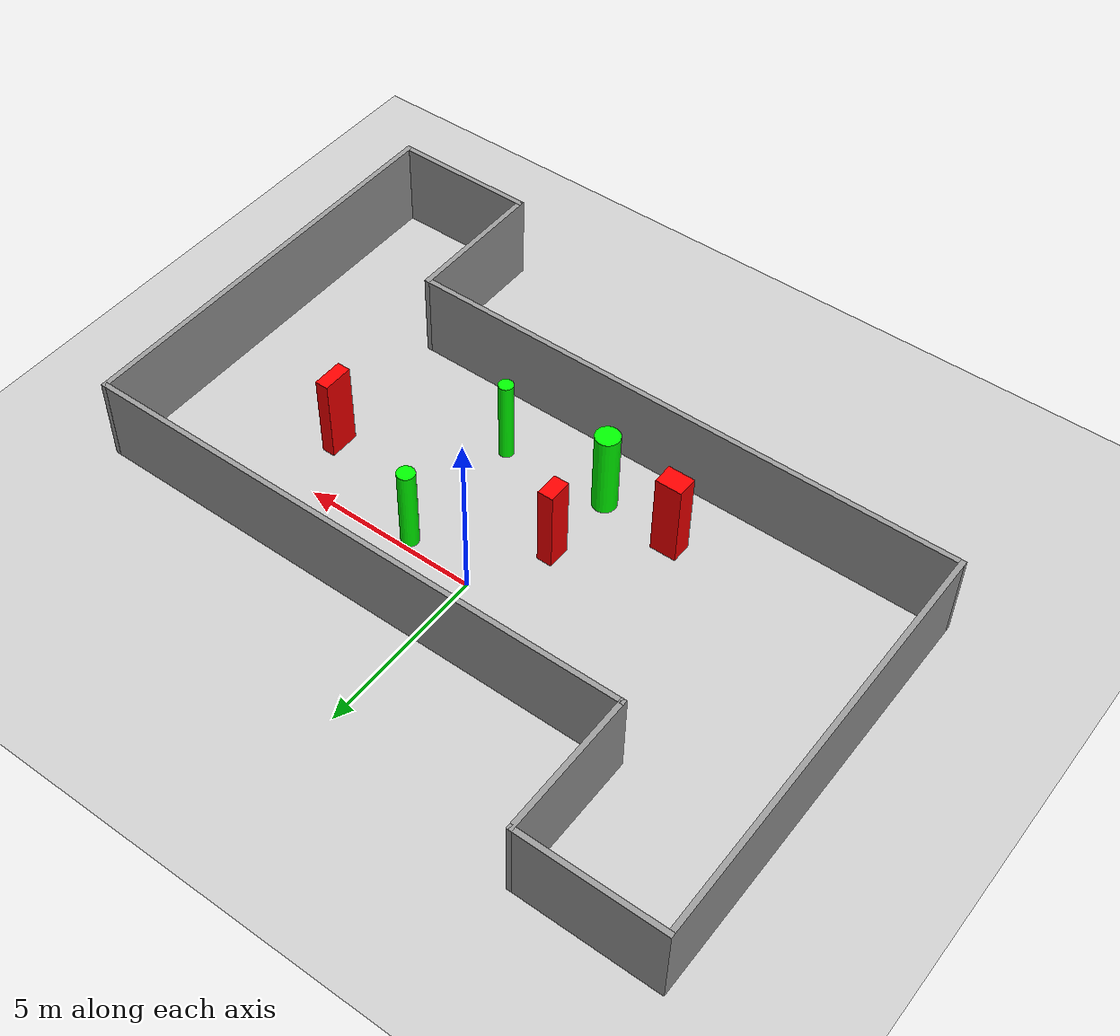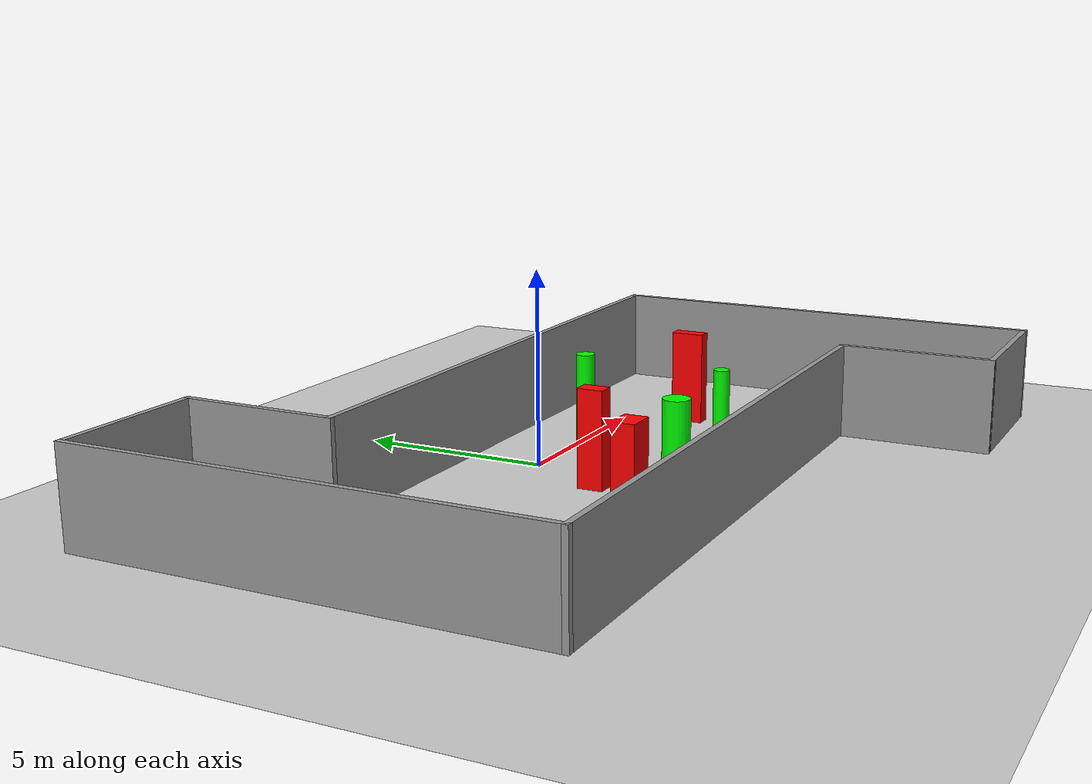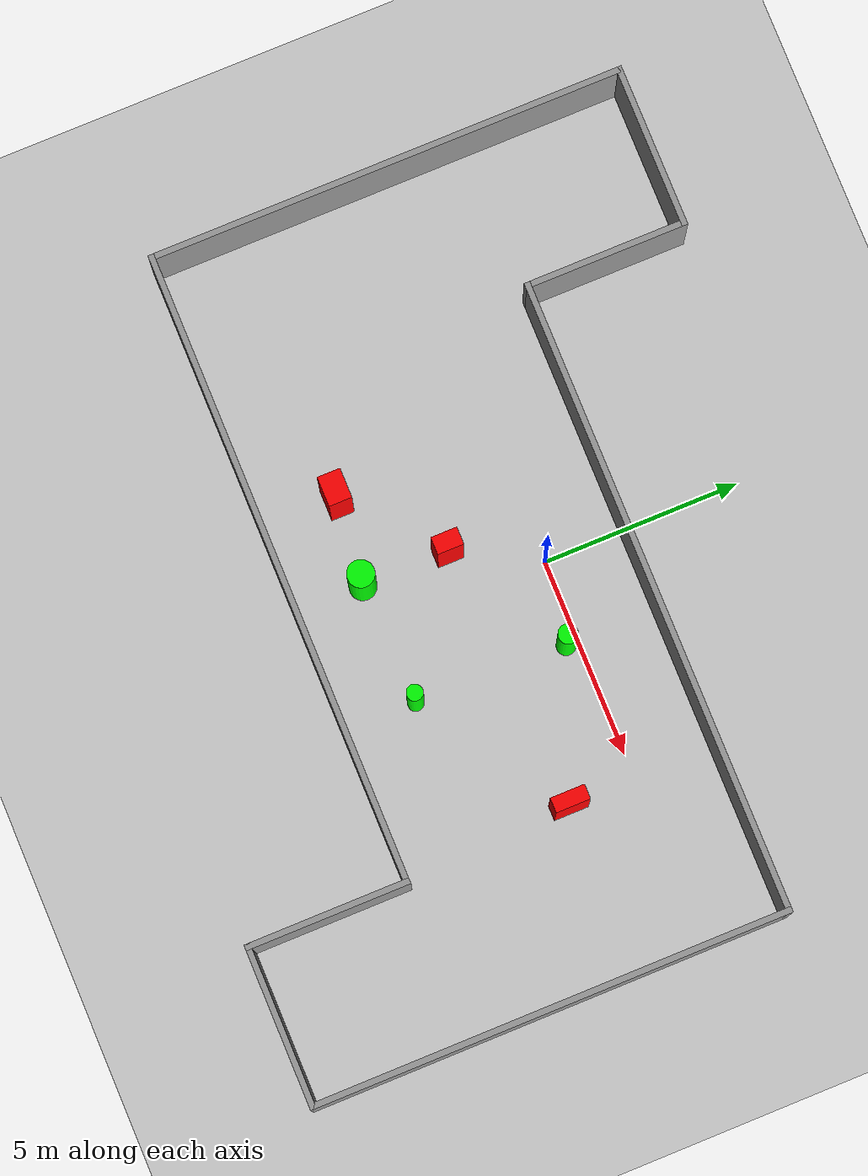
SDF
<sdf version="1.7">
 <world name="default">
  <light name="sun" type="directional">
   <pose>0 0 10 0 -0 0</pose>
   <diffuse>0.8 0.8 0.8 1</diffuse>
   <specular>0.2 0.2 0.2 1</specular>
   <attenuation>
    <range>1000</range>
    <constant>0.9</constant>
    <linear>0.01</linear>
    <quadratic>0.001</quadratic>
   </attenuation>
   <direction>-0.5 0.1 -0.9</direction>
   <spot><inner_angle>0</inner_angle><outer_angle>0</outer_angle><falloff>0</falloff></spot>
  </light>
  <model name="ground_plane">
   <static>1</static>
   <link name="link">
    <collision name="collision">
     <geometry><plane><normal>0 0 1</normal><size>100 100</size></plane></geometry>
     <surface>
      <contact><collide_bitmask>65535</collide_bitmask></contact>
      <friction><ode><mu>100</mu><mu2>50</mu2></ode></friction>
     </surface>
    </collision>
    <visual name="visual">
     <cast_shadows>0</cast_shadows>
     <geometry><plane><normal>0 0 1</normal><size>100 100</size></plane></geometry>
     <material>
      <script><uri>file://media/materials/scripts/gazebo.material</uri><name>Gazebo/Grey</name></script>
     </material>
    </visual>
   </link>
  </model>
  <gravity>0 0 -9.8</gravity>
  <magnetic_field>6e-06 2.3e-05 -4.2e-05</magnetic_field>
  <atmosphere type="adiabatic"/>
  <physics type="ode">
   <max_step_size>0.001</max_step_size>
   <real_time_factor>1</real_time_factor>
   <real_time_update_rate>1000</real_time_update_rate>
  </physics>
  <scene><ambient>0.4 0.4 0.4 1</ambient><background>0.7 0.7 0.7 1</background><shadows>1</shadows></scene>
  <spherical_coordinates>
   <surface_model>EARTH_WGS84</surface_model>
   <latitude_deg>0</latitude_deg>
   <longitude_deg>0</longitude_deg>
   <elevation>0</elevation>
   <heading_deg>0</heading_deg>
  </spherical_coordinates>
  <model name="my_base_walls">
   <link name="Wall_13">
    <collision name="Wall_13_Collision">
     <geometry><box><size>12.15 0.15 2.5</size></box></geometry>
     <pose>0 0 1.25 0 -0 0</pose>
    </collision>
    <visual name="Wall_13_Visual">
     <pose>0 0 1.25 0 -0 0</pose>
     <geometry><box><size>12.15 0.15 2.5</size></box></geometry>
     <material>
      <script><uri>file://media/materials/scripts/gazebo.material</uri><name>Gazebo/Grey</name></script>
      <ambient>1 1 1 1</ambient>
     </material>
     <meta><layer>0</layer></meta>
    </visual>
    <pose>10 -2 0 0 -0 1.5708</pose>
   </link>
   <link name="Wall_15">
    <collision name="Wall_15_Collision">
     <geometry><box><size>16.15 0.15 2.5</size></box></geometry>
     <pose>0 0 1.25 0 -0 0</pose>
    </collision>
    <visual name="Wall_15_Visual">
     <pose>0 0 1.25 0 -0 0</pose>
     <geometry><box><size>16.15 0.15 2.5</size></box></geometry>
     <material>
      <script><uri>file://media/materials/scripts/gazebo.material</uri><name>Gazebo/Grey</name></script>
      <ambient>1 1 1 1</ambient>
     </material>
     <meta><layer>0</layer></meta>
    </visual>
    <pose>2 4 0 0 -0 3.14159</pose>
   </link>
   <link name="Wall_17">
    <collision name="Wall_17_Collision">
     <geometry><box><size>4.15 0.15 2.5</size></box></geometry>
     <pose>0 0 1.25 0 -0 0</pose>
    </collision>
    <visual name="Wall_17_Visual">
     <pose>0 0 1.25 0 -0 0</pose>
     <geometry><box><size>4.15 0.15 2.5</size></box></geometry>
     <material>
      <script><uri>file://media/materials/scripts/gazebo.material</uri><name>Gazebo/Grey</name></script>
      <ambient>1 1 1 1</ambient>
     </material>
     <meta><layer>0</layer></meta>
    </visual>
    <pose>6 -6 0 0 -0 -1.5708</pose>
   </link>
   <link name="Wall_19">
    <collision name="Wall_19_Collision">
     <geometry><box><size>12.15 0.15 2.5</size></box></geometry>
     <pose>0 0 1.25 0 -0 0</pose>
    </collision>
    <visual name="Wall_19_Visual">
     <pose>0 0 1.25 0 -0 0</pose>
     <geometry><box><size>12.15 0.15 2.5</size></box></geometry>
     <material>
      <script><uri>file://media/materials/scripts/gazebo.material</uri><name>Gazebo/Grey</name></script>
      <ambient>1 1 1 1</ambient>
     </material>
     <meta><layer>0</layer></meta>
    </visual>
    <pose>-10 2 0 0 -0 1.5708</pose>
   </link>
   <link name="Wall_21">
    <collision name="Wall_21_Collision">
     <geometry><box><size>4.15 0.15 2.5</size></box></geometry>
     <pose>0 0 1.25 0 -0 0</pose>
    </collision>
    <visual name="Wall_21_Visual">
     <pose>0 0 1.25 0 -0 0</pose>
     <geometry><box><size>4.15 0.15 2.5</size></box></geometry>
     <material>
      <script><uri>file://media/materials/scripts/gazebo.material</uri><name>Gazebo/Grey</name></script>
      <ambient>1 1 1 1</ambient>
     </material>
     <meta><layer>0</layer></meta>
    </visual>
    <pose>-8 8 0 0 -0 0</pose>
   </link>
   <link name="Wall_23">
    <collision name="Wall_23_Collision">
     <geometry><box><size>4.15 0.15 2.5</size></box></geometry>
     <pose>0 0 1.25 0 -0 0</pose>
    </collision>
    <visual name="Wall_23_Visual">
     <pose>0 0 1.25 0 -0 0</pose>
     <geometry><box><size>4.15 0.15 2.5</size></box></geometry>
     <material>
      <script><uri>file://media/materials/scripts/gazebo.material</uri><name>Gazebo/Grey</name></script>
      <ambient>1 1 1 1</ambient>
     </material>
     <meta><layer>0</layer></meta>
    </visual>
    <pose>-6 6 0 0 -0 -1.5708</pose>
   </link>
   <link name="Wall_25">
    <collision name="Wall_25_Collision">
     <geometry><box><size>4.15 0.15 2.5</size></box></geometry>
     <pose>0 0 1.25 0 -0 0</pose>
    </collision>
    <visual name="Wall_25_Visual">
     <pose>0 0 1.25 0 -0 0</pose>
     <geometry><box><size>4.15 0.15 2.5</size></box></geometry>
     <material>
      <script><uri>file://media/materials/scripts/gazebo.material</uri><name>Gazebo/Grey</name></script>
      <ambient>1 1 1 1</ambient>
     </material>
     <meta><layer>0</layer></meta>
    </visual>
    <pose>8 -8 0 0 -0 0</pose>
   </link>
   <link name="Wall_9">
    <collision name="Wall_9_Collision">
     <geometry><box><size>16.15 0.15 2.5</size></box></geometry>
     <pose>0 0 1.25 0 -0 0</pose>
    </collision>
    <visual name="Wall_9_Visual">
     <pose>0 0 1.25 0 -0 0</pose>
     <geometry><box><size>16.15 0.15 2.5</size></box></geometry>
     <material>
      <script><uri>file://media/materials/scripts/gazebo.material</uri><name>Gazebo/Grey</name></script>
      <ambient>1 1 1 1</ambient>
     </material>
     <meta><layer>0</layer></meta>
    </visual>
    <pose>-2 -4 0 0 -0 3.14159</pose>
   </link>
   <static>1</static>
   <pose>-0 -2 0 0 -0 0</pose>
  </model>
  <model name="cylinder1">
   <static>1</static>
   <link name="link">
    <inertial>
     <mass>1</mass>
     <inertia><ixx>0.5</ixx><ixy>0</ixy><ixz>0</ixz><iyy>0.5</iyy><iyz>0</iyz><izz>1</izz></inertia>
    </inertial>
    <collision name="collision">
     <geometry><cylinder><radius>0.20560199943109742</radius><length>2.5</length></cylinder></geometry>
    </collision>
    <visual name="visual">
     <geometry><cylinder><radius>0.20560199943109742</radius><length>2.5</length></cylinder></geometry>
     <material>
      <ambient>0 1 0 1</ambient>
      <diffuse>0 1 0 1</diffuse>
      <specular>0.1 0.1 0.1 1</specular>
      <emissive>0 0 0 0</emissive>
     </material>
    </visual>
   </link>
   <pose>1.9626203970226745 -4.1488494869217405 1.25 0 0 0</pose>
  </model>
  <model name="cylinder2">
   <static>1</static>
   <link name="link">
    <inertial>
     <mass>1</mass>
     <inertia><ixx>0.5</ixx><ixy>0</ixy><ixz>0</ixz><iyy>0.5</iyy><iyz>0</iyz><izz>1</izz></inertia>
    </inertial>
    <collision name="collision">
     <geometry><cylinder><radius>0.3411319526846345</radius><length>2.5</length></cylinder></geometry>
    </collision>
    <visual name="visual">
     <geometry><cylinder><radius>0.3411319526846345</radius><length>2.5</length></cylinder></geometry>
     <material>
      <ambient>0 1 0 1</ambient>
      <diffuse>0 1 0 1</diffuse>
      <specular>0.1 0.1 0.1 1</specular>
      <emissive>0 0 0 0</emissive>
     </material>
    </visual>
   </link>
   <pose>-1.1199090359109594 -4.262952309146229 1.25 0 0 0</pose>
  </model>
  <model name="cylinder3">
   <static>1</static>
   <link name="link">
    <inertial>
     <mass>1</mass>
     <inertia><ixx>0.5</ixx><ixy>0</ixy><ixz>0</ixz><iyy>0.5</iyy><iyz>0</iyz><izz>1</izz></inertia>
    </inertial>
    <collision name="collision">
     <geometry><cylinder><radius>0.24476405932255554</radius><length>2.5</length></cylinder></geometry>
    </collision>
    <visual name="visual">
     <geometry><cylinder><radius>0.24476405932255554</radius><length>2.5</length></cylinder></geometry>
     <material>
      <ambient>0 1 0 1</ambient>
      <diffuse>0 1 0 1</diffuse>
      <specular>0.1 0.1 0.1 1</specular>
      <emissive>0 0 0 0</emissive>
     </material>
    </visual>
   </link>
   <pose>2.048014319701256 -0.29246544151986864 1.25 0 0 0</pose>
  </model>
  <model name="box1">
   <static>1</static>
   <link name="link">
    <inertial>
     <mass>1</mass>
     <inertia><ixx>0.083</ixx><ixy>0</ixy><ixz>0</ixz><iyy>0.083</iyy><iyz>0</iyz><izz>0.083</izz></inertia>
    </inertial>
    <collision name="collision">
     <geometry><box><size>0.7500142547449244 0.5852306862302108 2.5</size></box></geometry>
    </collision>
    <visual name="visual">
     <geometry><box><size>0.7500142547449244 0.5852306862302108 2.5</size></box></geometry>
     <material>
      <ambient>1 0 0 1</ambient>
      <diffuse>1 0 0 1</diffuse>
      <specular>0.1 0.1 0.1 1</specular>
      <emissive>0 0 0 0</emissive>
     </material>
    </visual>
    <sensor name="my_contact" type="contact">
     <contact><collision>box_collision</collision><topic>__default_topic__</topic></contact>
    </sensor>
   </link>
   <pose>-3.2574638179903586 -4.06150380678276 1.25 0 0 0</pose>
  </model>
  <model name="box2">
   <static>1</static>
   <link name="link">
    <inertial>
     <mass>1</mass>
     <inertia><ixx>0.083</ixx><ixy>0</ixy><ixz>0</ixz><iyy>0.083</iyy><iyz>0</iyz><izz>0.083</izz></inertia>
    </inertial>
    <collision name="collision">
     <geometry><box><size>0.44008216806941153 0.667541694174191 2.5</size></box></geometry>
    </collision>
    <visual name="visual">
     <geometry><box><size>0.44008216806941153 0.667541694174191 2.5</size></box></geometry>
     <material>
      <ambient>1 0 0 1</ambient>
      <diffuse>1 0 0 1</diffuse>
      <specular>0.1 0.1 0.1 1</specular>
      <emissive>0 0 0 0</emissive>
     </material>
    </visual>
    <sensor name="my_contact" type="contact">
     <contact><collision>box_collision</collision><topic>__default_topic__</topic></contact>
    </sensor>
   </link>
   <pose>-1.0726686478227307 -2.0823027004245898 1.25 0 0 0</pose>
  </model>
  <model name="box3">
   <static>1</static>
   <link name="link">
    <inertial>
     <mass>1</mass>
     <inertia><ixx>0.083</ixx><ixy>0</ixy><ixz>0</ixz><iyy>0.083</iyy><iyz>0</iyz><izz>0.083</izz></inertia>
    </inertial>
    <collision name="collision">
     <geometry><box><size>0.3759175387751632 0.8726106171321082 2.5</size></box></geometry>
    </collision>
    <visual name="visual">
     <geometry><box><size>0.3759175387751632 0.8726106171321082 2.5</size></box></geometry>
     <material>
      <ambient>1 0 0 1</ambient>
      <diffuse>1 0 0 1</diffuse>
      <specular>0.1 0.1 0.1 1</specular>
      <emissive>0 0 0 0</emissive>
     </material>
    </visual>
    <sensor name="my_contact" type="contact">
     <contact><collision>box_collision</collision><topic>__default_topic__</topic></contact>
    </sensor>
   </link>
   <pose>5.646981546375576 -1.7227035642788024 1.25 0 0 0</pose>
  </model>
 </world>
</sdf>
